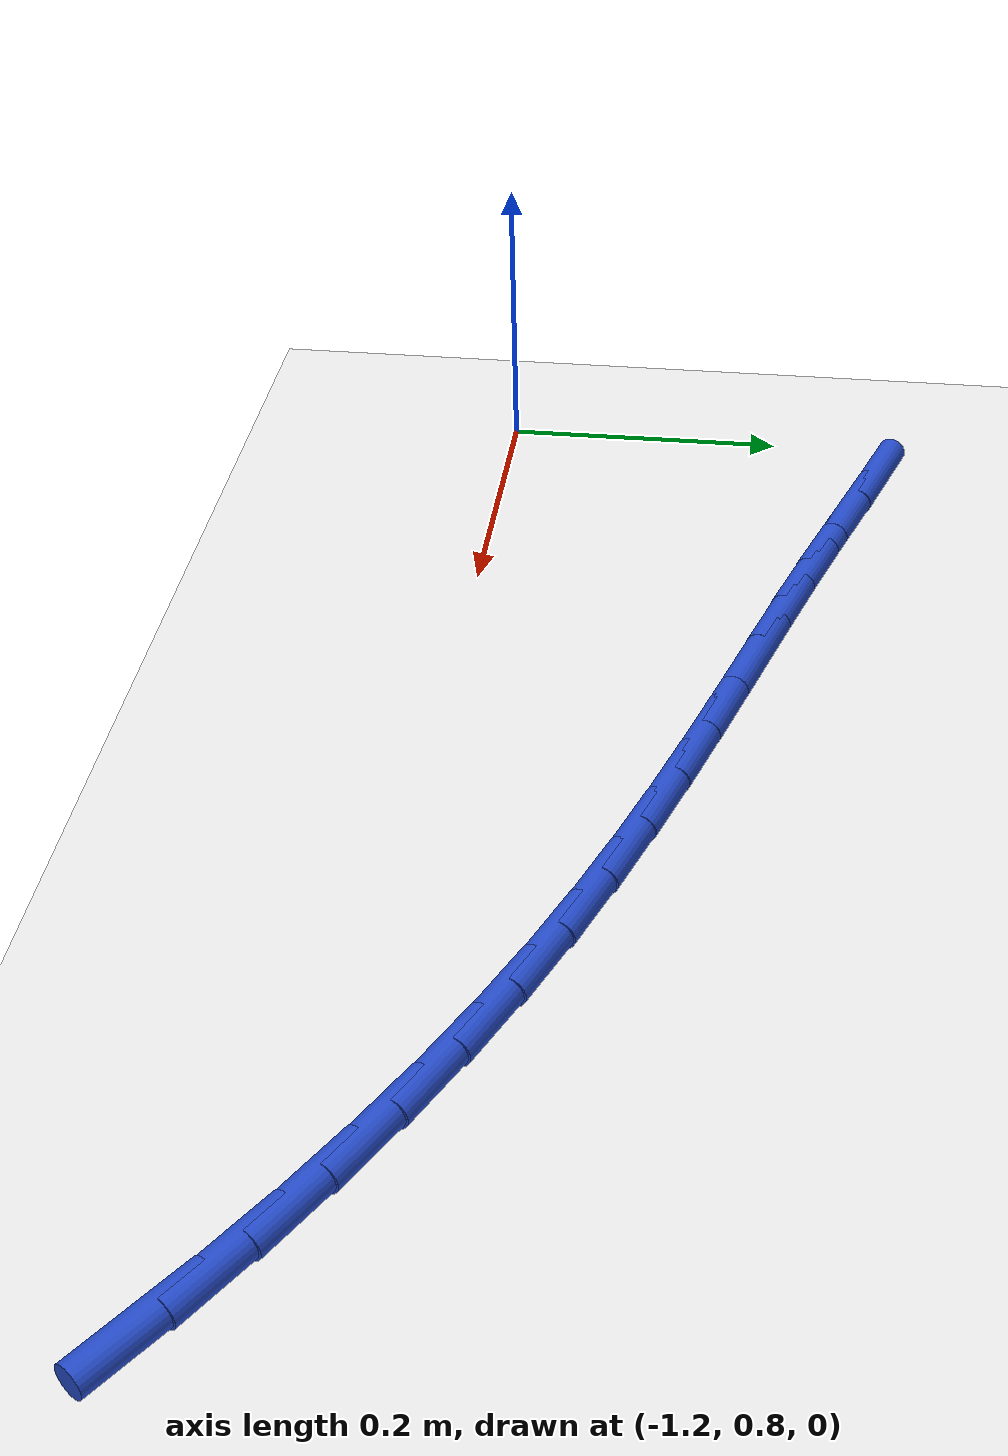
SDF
<sdf version="1.6">
 <world name="default">
  <model name="ground_plane">
   <static>1</static>
   <link name="link">
    <collision name="collision">
     <geometry><plane><normal>0 0 1</normal><size>100 100</size></plane></geometry>
     <surface><friction><ode><mu>100</mu><mu2>50</mu2></ode></friction></surface>
    </collision>
    <visual name="visual">
     <cast_shadows>0</cast_shadows>
     <geometry><plane><normal>0 0 1</normal><size>100 100</size></plane></geometry>
     <material>
      <script><uri>file://media/materials/scripts/gazebo.material</uri><name>Gazebo/WhiteGlow</name></script>
     </material>
    </visual>
   </link>
  </model>
  <model name="line">
   <link name="link_17">
    <pose>-0.3659281470664446 0.739628072410171 0.01 0 1.57 -0.629532814763707</pose>
    <collision name="collision">
     <geometry><cylinder><radius>0.01</radius><length>0.08</length></cylinder></geometry>
    </collision>
    <visual name="visual">
     <material>
      <script><name>Gazebo/Blue</name><uri>file://media/materials/scripts/gazebo.material</uri></script>
     </material>
     <geometry><cylinder><radius>0.01</radius><length>0.08</length></cylinder></geometry>
    </visual>
   </link>
   <link name="link_18">
    <pose>-0.40747517948546075 0.769890907061898 0.01 0 1.57 -0.5881101183981946</pose>
    <collision name="collision">
     <geometry><cylinder><radius>0.01</radius><length>0.08</length></cylinder></geometry>
    </collision>
    <visual name="visual">
     <material>
      <script><name>Gazebo/Blue</name><uri>file://media/materials/scripts/gazebo.material</uri></script>
     </material>
     <geometry><cylinder><radius>0.01</radius><length>0.08</length></cylinder></geometry>
    </visual>
   </link>
   <link name="link_19">
    <pose>-0.4503321075006014 0.7984688485303034 0.01 0 1.57 -0.5484990349841696</pose>
    <collision name="collision">
     <geometry><cylinder><radius>0.01</radius><length>0.08</length></cylinder></geometry>
    </collision>
    <visual name="visual">
     <material>
      <script><name>Gazebo/Blue</name><uri>file://media/materials/scripts/gazebo.material</uri></script>
     </material>
     <geometry><cylinder><radius>0.01</radius><length>0.08</length></cylinder></geometry>
    </visual>
   </link>
   <link name="link_20">
    <pose>-0.494327951053003 0.825352153937388 0.01 0 1.57 -0.5104749501543075</pose>
    <collision name="collision">
     <geometry><cylinder><radius>0.01</radius><length>0.08</length></cylinder></geometry>
    </collision>
    <visual name="visual">
     <material>
      <script><name>Gazebo/Blue</name><uri>file://media/materials/scripts/gazebo.material</uri></script>
     </material>
     <geometry><cylinder><radius>0.01</radius><length>0.08</length></cylinder></geometry>
    </visual>
   </link>
   <link name="link_21">
    <pose>-0.5392917300838019 0.8505310804051531 0.01 0 1.57 -0.4738126013549564</pose>
    <collision name="collision">
     <geometry><cylinder><radius>0.01</radius><length>0.08</length></cylinder></geometry>
    </collision>
    <visual name="visual">
     <material>
      <script><name>Gazebo/Blue</name><uri>file://media/materials/scripts/gazebo.material</uri></script>
     </material>
     <geometry><cylinder><radius>0.01</radius><length>0.08</length></cylinder></geometry>
    </visual>
   </link>
   <link name="link_22">
    <pose>-0.5850524645341345 0.8739958850555999 0.01 0 1.57 -0.43828653546666146</pose>
    <collision name="collision">
     <geometry><cylinder><radius>0.01</radius><length>0.08</length></cylinder></geometry>
    </collision>
    <visual name="visual">
     <material>
      <script><name>Gazebo/Blue</name><uri>file://media/materials/scripts/gazebo.material</uri></script>
     </material>
     <geometry><cylinder><radius>0.01</radius><length>0.08</length></cylinder></geometry>
    </visual>
   </link>
   <link name="link_23">
    <pose>-0.6314391743451375 0.8957368250107292 0.01 0 1.57 -0.40379949012489236</pose>
    <collision name="collision">
     <geometry><cylinder><radius>0.01</radius><length>0.08</length></cylinder></geometry>
    </collision>
    <visual name="visual">
     <material>
      <script><name>Gazebo/Blue</name><uri>file://media/materials/scripts/gazebo.material</uri></script>
     </material>
     <geometry><cylinder><radius>0.01</radius><length>0.08</length></cylinder></geometry>
    </visual>
   </link>
   <link name="link_24">
    <pose>-0.6782826554844723 0.9157520659899898 0.01 0 1.57 -0.3727277492750169</pose>
    <collision name="collision">
     <geometry><cylinder><radius>0.01</radius><length>0.08</length></cylinder></geometry>
    </collision>
    <visual name="visual">
     <material>
      <script><name>Gazebo/Blue</name><uri>file://media/materials/scripts/gazebo.material</uri></script>
     </material>
     <geometry><cylinder><radius>0.01</radius><length>0.08</length></cylinder></geometry>
    </visual>
   </link>
   <link name="link_25">
    <pose>-0.7254483543583417 0.9341940711661418 0.01 0 1.57 -0.3474792417741428</pose>
    <collision name="collision">
     <geometry><cylinder><radius>0.01</radius><length>0.08</length></cylinder></geometry>
    </collision>
    <visual name="visual">
     <material>
      <script><name>Gazebo/Blue</name><uri>file://media/materials/scripts/gazebo.material</uri></script>
     </material>
     <geometry><cylinder><radius>0.01</radius><length>0.08</length></cylinder></geometry>
    </visual>
   </link>
   <link name="link_26">
    <pose>-0.7728332385817407 0.9513556667909308 0.01 0 1.57 -0.3282740059276123</pose>
    <collision name="collision">
     <geometry><cylinder><radius>0.01</radius><length>0.08</length></cylinder></geometry>
    </collision>
    <visual name="visual">
     <material>
      <script><name>Gazebo/Blue</name><uri>file://media/materials/scripts/gazebo.material</uri></script>
     </material>
     <geometry><cylinder><radius>0.01</radius><length>0.08</length></cylinder></geometry>
    </visual>
   </link>
   <link name="link_27">
    <pose>-0.8203354241921299 0.9675347930098726 0.01 0 1.57 -0.3152094953519339</pose>
    <collision name="collision">
     <geometry><cylinder><radius>0.01</radius><length>0.08</length></cylinder></geometry>
    </collision>
    <visual name="visual">
     <material>
      <script><name>Gazebo/Blue</name><uri>file://media/materials/scripts/gazebo.material</uri></script>
     </material>
     <geometry><cylinder><radius>0.01</radius><length>0.08</length></cylinder></geometry>
    </visual>
   </link>
   <link name="link_28">
    <pose>-0.8678530272269706 0.9830293899684845 0.01 0 1.57 -0.3083644798377469</pose>
    <collision name="collision">
     <geometry><cylinder><radius>0.01</radius><length>0.08</length></cylinder></geometry>
    </collision>
    <visual name="visual">
     <material>
      <script><name>Gazebo/Blue</name><uri>file://media/materials/scripts/gazebo.material</uri></script>
     </material>
     <geometry><cylinder><radius>0.01</radius><length>0.08</length></cylinder></geometry>
    </visual>
   </link>
   <link name="link_29">
    <pose>-0.9152841637237231 0.9981373978122828 0.01 0 1.57 -0.3078137139429258</pose>
    <collision name="collision">
     <geometry><cylinder><radius>0.01</radius><length>0.08</length></cylinder></geometry>
    </collision>
    <visual name="visual">
     <material>
      <script><name>Gazebo/Blue</name><uri>file://media/materials/scripts/gazebo.material</uri></script>
     </material>
     <geometry><cylinder><radius>0.01</radius><length>0.08</length></cylinder></geometry>
    </visual>
   </link>
   <link name="link_30">
    <pose>-0.9625269497198491 1.013156756686784 0.01 0 1.57 -0.313635982248948</pose>
    <collision name="collision">
     <geometry><cylinder><radius>0.01</radius><length>0.08</length></cylinder></geometry>
    </collision>
    <visual name="visual">
     <material>
      <script><name>Gazebo/Blue</name><uri>file://media/materials/scripts/gazebo.material</uri></script>
     </material>
     <geometry><cylinder><radius>0.01</radius><length>0.08</length></cylinder></geometry>
    </visual>
   </link>
   <link name="link_31">
    <pose>-1.009479501252808 1.0283854067375042 0.01 0 1.57 -0.32569144161398295</pose>
    <collision name="collision">
     <geometry><cylinder><radius>0.01</radius><length>0.08</length></cylinder></geometry>
    </collision>
    <visual name="visual">
     <material>
      <script><name>Gazebo/Blue</name><uri>file://media/materials/scripts/gazebo.material</uri></script>
     </material>
     <geometry><cylinder><radius>0.01</radius><length>0.08</length></cylinder></geometry>
    </visual>
   </link>
   <link name="link_32">
    <pose>-1.0560456580611934 1.0441116304607445 0.01 0 1.57 -0.33610510327911913</pose>
    <collision name="collision">
     <geometry><cylinder><radius>0.01</radius><length>0.08</length></cylinder></geometry>
    </collision>
    <visual name="visual">
     <material>
      <script><name>Gazebo/Blue</name><uri>file://media/materials/scripts/gazebo.material</uri></script>
     </material>
     <geometry><cylinder><radius>0.01</radius><length>0.08</length></cylinder></geometry>
    </visual>
   </link>
   <link name="link_33">
    <pose>-1.1023316904823954 1.0602821474953277 0.01 0 1.57 -0.33492636460139485</pose>
    <collision name="collision">
     <geometry><cylinder><radius>0.01</radius><length>0.08</length></cylinder></geometry>
    </collision>
    <visual name="visual">
     <material>
      <script><name>Gazebo/Blue</name><uri>file://media/materials/scripts/gazebo.material</uri></script>
     </material>
     <geometry><cylinder><radius>0.01</radius><length>0.08</length></cylinder></geometry>
    </visual>
   </link>
   <link name="link_34">
    <pose>-1.1486957737757293 1.076418636179721 0.01 0 1.57 -0.3216001345120442</pose>
    <collision name="collision">
     <geometry><cylinder><radius>0.01</radius><length>0.08</length></cylinder></geometry>
    </collision>
    <visual name="visual">
     <material>
      <script><name>Gazebo/Blue</name><uri>file://media/materials/scripts/gazebo.material</uri></script>
     </material>
     <geometry><cylinder><radius>0.01</radius><length>0.08</length></cylinder></geometry>
    </visual>
   </link>
  </model>
 </world>
</sdf>
